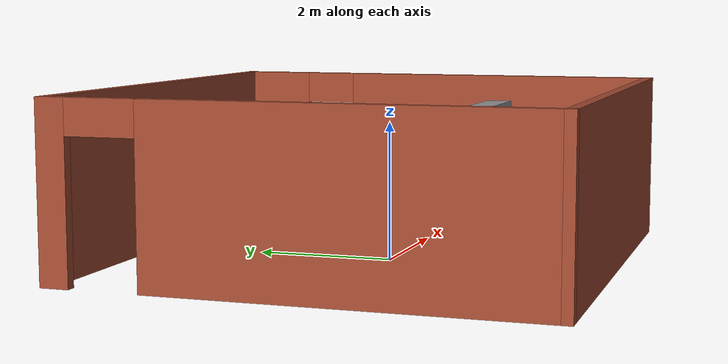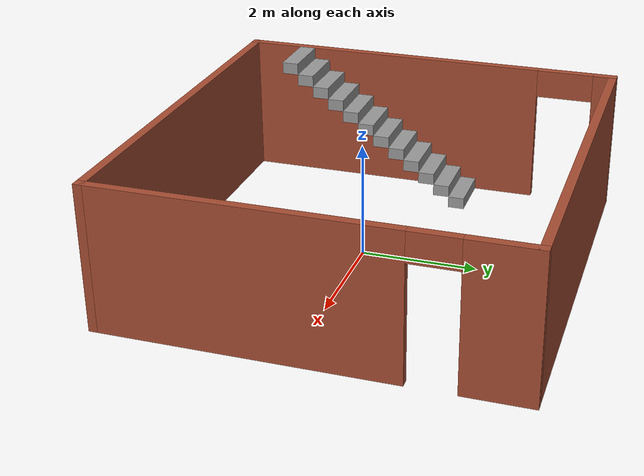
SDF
<?xml version='1.0'?>
<sdf version='1.6'>
  <model name='Stairs_wor'>
    <pose frame=''>0.191947 0.243534 0 0 -0 0</pose>
    <link name='Stairs_1'>
      <visual name='Stairs_1_Visual_0'>
        <pose frame=''>-2.8959 0.862168 0.104167 0 -0 0</pose>
        <geometry>
          <box>
            <size>1 0.291667 0.208333</size>
          </box>
        </geometry>
        <material>
          <script>
            <uri>file://media/materials/scripts/gazebo.material</uri>
            <name>Gazebo/Grey</name>
          </script>
          <ambient>0.533333 0.541176 0.521569 1</ambient>
        </material>
        <meta>
          <layer>0</layer>
        </meta>
      </visual>
      <collision name='Stairs_1_Collision_0'>
        <geometry>
          <box>
            <size>1 0.291667 0.208333</size>
          </box>
        </geometry>
        <pose frame=''>-2.8959 0.862168 0.104167 0 -0 0</pose>
      </collision>
      <visual name='Stairs_1_Visual_1'>
        <pose frame=''>-2.8959 0.570501 0.3125 0 -0 0</pose>
        <geometry>
          <box>
            <size>1 0.291667 0.208333</size>
          </box>
        </geometry>
        <material>
          <script>
            <uri>file://media/materials/scripts/gazebo.material</uri>
            <name>Gazebo/Grey</name>
          </script>
          <ambient>0.533333 0.541176 0.521569 1</ambient>
        </material>
        <meta>
          <layer>0</layer>
        </meta>
      </visual>
      <collision name='Stairs_1_Collision_1'>
        <geometry>
          <box>
            <size>1 0.291667 0.208333</size>
          </box>
        </geometry>
        <pose frame=''>-2.8959 0.570501 0.3125 0 -0 0</pose>
      </collision>
      <visual name='Stairs_1_Visual_2'>
        <pose frame=''>-2.8959 0.278834 0.520833 0 -0 0</pose>
        <geometry>
          <box>
            <size>1 0.291667 0.208333</size>
          </box>
        </geometry>
        <material>
          <script>
            <uri>file://media/materials/scripts/gazebo.material</uri>
            <name>Gazebo/Grey</name>
          </script>
          <ambient>0.533333 0.541176 0.521569 1</ambient>
        </material>
        <meta>
          <layer>0</layer>
        </meta>
      </visual>
      <collision name='Stairs_1_Collision_2'>
        <geometry>
          <box>
            <size>1 0.291667 0.208333</size>
          </box>
        </geometry>
        <pose frame=''>-2.8959 0.278834 0.520833 0 -0 0</pose>
      </collision>
      <visual name='Stairs_1_Visual_3'>
        <pose frame=''>-2.8959 -0.012833 0.729167 0 -0 0</pose>
        <geometry>
          <box>
            <size>1 0.291667 0.208333</size>
          </box>
        </geometry>
        <material>
          <script>
            <uri>file://media/materials/scripts/gazebo.material</uri>
            <name>Gazebo/Grey</name>
          </script>
          <ambient>0.533333 0.541176 0.521569 1</ambient>
        </material>
        <meta>
          <layer>0</layer>
        </meta>
      </visual>
      <collision name='Stairs_1_Collision_3'>
        <geometry>
          <box>
            <size>1 0.291667 0.208333</size>
          </box>
        </geometry>
        <pose frame=''>-2.8959 -0.012833 0.729167 0 -0 0</pose>
      </collision>
      <visual name='Stairs_1_Visual_4'>
        <pose frame=''>-2.8959 -0.304499 0.9375 0 -0 0</pose>
        <geometry>
          <box>
            <size>1 0.291667 0.208333</size>
          </box>
        </geometry>
        <material>
          <script>
            <uri>file://media/materials/scripts/gazebo.material</uri>
            <name>Gazebo/Grey</name>
          </script>
          <ambient>0.533333 0.541176 0.521569 1</ambient>
        </material>
        <meta>
          <layer>0</layer>
        </meta>
      </visual>
      <collision name='Stairs_1_Collision_4'>
        <geometry>
          <box>
            <size>1 0.291667 0.208333</size>
          </box>
        </geometry>
        <pose frame=''>-2.8959 -0.304499 0.9375 0 -0 0</pose>
      </collision>
      <visual name='Stairs_1_Visual_5'>
        <pose frame=''>-2.8959 -0.596166 1.14583 0 -0 0</pose>
        <geometry>
          <box>
            <size>1 0.291667 0.208333</size>
          </box>
        </geometry>
        <material>
          <script>
            <uri>file://media/materials/scripts/gazebo.material</uri>
            <name>Gazebo/Grey</name>
          </script>
          <ambient>0.533333 0.541176 0.521569 1</ambient>
        </material>
        <meta>
          <layer>0</layer>
        </meta>
      </visual>
      <collision name='Stairs_1_Collision_5'>
        <geometry>
          <box>
            <size>1 0.291667 0.208333</size>
          </box>
        </geometry>
        <pose frame=''>-2.8959 -0.596166 1.14583 0 -0 0</pose>
      </collision>
      <visual name='Stairs_1_Visual_6'>
        <pose frame=''>-2.8959 -0.887833 1.35417 0 -0 0</pose>
        <geometry>
          <box>
            <size>1 0.291667 0.208333</size>
          </box>
        </geometry>
        <material>
          <script>
            <uri>file://media/materials/scripts/gazebo.material</uri>
            <name>Gazebo/Grey</name>
          </script>
          <ambient>0.533333 0.541176 0.521569 1</ambient>
        </material>
        <meta>
          <layer>0</layer>
        </meta>
      </visual>
      <collision name='Stairs_1_Collision_6'>
        <geometry>
          <box>
            <size>1 0.291667 0.208333</size>
          </box>
        </geometry>
        <pose frame=''>-2.8959 -0.887833 1.35417 0 -0 0</pose>
      </collision>
      <visual name='Stairs_1_Visual_7'>
        <pose frame=''>-2.8959 -1.1795 1.5625 0 -0 0</pose>
        <geometry>
          <box>
            <size>1 0.291667 0.208333</size>
          </box>
        </geometry>
        <material>
          <script>
            <uri>file://media/materials/scripts/gazebo.material</uri>
            <name>Gazebo/Grey</name>
          </script>
          <ambient>0.533333 0.541176 0.521569 1</ambient>
        </material>
        <meta>
          <layer>0</layer>
        </meta>
      </visual>
      <collision name='Stairs_1_Collision_7'>
        <geometry>
          <box>
            <size>1 0.291667 0.208333</size>
          </box>
        </geometry>
        <pose frame=''>-2.8959 -1.1795 1.5625 0 -0 0</pose>
      </collision>
      <visual name='Stairs_1_Visual_8'>
        <pose frame=''>-2.8959 -1.47117 1.77083 0 -0 0</pose>
        <geometry>
          <box>
            <size>1 0.291667 0.208333</size>
          </box>
        </geometry>
        <material>
          <script>
            <uri>file://media/materials/scripts/gazebo.material</uri>
            <name>Gazebo/Grey</name>
          </script>
          <ambient>0.533333 0.541176 0.521569 1</ambient>
        </material>
        <meta>
          <layer>0</layer>
        </meta>
      </visual>
      <collision name='Stairs_1_Collision_8'>
        <geometry>
          <box>
            <size>1 0.291667 0.208333</size>
          </box>
        </geometry>
        <pose frame=''>-2.8959 -1.47117 1.77083 0 -0 0</pose>
      </collision>
      <visual name='Stairs_1_Visual_9'>
        <pose frame=''>-2.8959 -1.76283 1.97917 0 -0 0</pose>
        <geometry>
          <box>
            <size>1 0.291667 0.208333</size>
          </box>
        </geometry>
        <material>
          <script>
            <uri>file://media/materials/scripts/gazebo.material</uri>
            <name>Gazebo/Grey</name>
          </script>
          <ambient>0.533333 0.541176 0.521569 1</ambient>
        </material>
        <meta>
          <layer>0</layer>
        </meta>
      </visual>
      <collision name='Stairs_1_Collision_9'>
        <geometry>
          <box>
            <size>1 0.291667 0.208333</size>
          </box>
        </geometry>
        <pose frame=''>-2.8959 -1.76283 1.97917 0 -0 0</pose>
      </collision>
      <visual name='Stairs_1_Visual_10'>
        <pose frame=''>-2.8959 -2.0545 2.1875 0 -0 0</pose>
        <geometry>
          <box>
            <size>1 0.291667 0.208333</size>
          </box>
        </geometry>
        <material>
          <script>
            <uri>file://media/materials/scripts/gazebo.material</uri>
            <name>Gazebo/Grey</name>
          </script>
          <ambient>0.533333 0.541176 0.521569 1</ambient>
        </material>
        <meta>
          <layer>0</layer>
        </meta>
      </visual>
      <collision name='Stairs_1_Collision_10'>
        <geometry>
          <box>
            <size>1 0.291667 0.208333</size>
          </box>
        </geometry>
        <pose frame=''>-2.8959 -2.0545 2.1875 0 -0 0</pose>
      </collision>
      <visual name='Stairs_1_Visual_11'>
        <pose frame=''>-2.8959 -2.34617 2.39583 0 -0 0</pose>
        <geometry>
          <box>
            <size>1 0.291667 0.208333</size>
          </box>
        </geometry>
        <material>
          <script>
            <uri>file://media/materials/scripts/gazebo.material</uri>
            <name>Gazebo/Grey</name>
          </script>
          <ambient>0.533333 0.541176 0.521569 1</ambient>
        </material>
        <meta>
          <layer>0</layer>
        </meta>
      </visual>
      <collision name='Stairs_1_Collision_11'>
        <geometry>
          <box>
            <size>1 0.291667 0.208333</size>
          </box>
        </geometry>
        <pose frame=''>-2.8959 -2.34617 2.39583 0 -0 0</pose>
      </collision>
    </link>
    <link name='Wall_0'>
      <collision name='Wall_0_Collision'>
        <geometry>
          <box>
            <size>7 0.15 2.5</size>
          </box>
        </geometry>
        <pose frame=''>0 0 1.25 0 -0 0</pose>
      </collision>
      <visual name='Wall_0_Visual'>
        <pose frame=''>0 0 1.25 0 -0 0</pose>
        <geometry>
          <box>
            <size>7 0.15 2.5</size>
          </box>
        </geometry>
        <material>
          <script>
            <uri>file://media/materials/scripts/gazebo.material</uri>
            <name>Gazebo/Bricks</name>
          </script>
          <ambient>1 1 1 1</ambient>
        </material>
        <meta>
          <layer>0</layer>
        </meta>
      </visual>
      <pose frame=''>-0 3.425 0 0 -0 0</pose>
    </link>
    <link name='Wall_3'>
      <pose frame=''>3.425 -0 0 0 -0 -1.5708</pose>
      <visual name='Wall_3_Visual_0'>
        <pose frame=''>-2.9193 0 1.25 0 -0 0</pose>
        <geometry>
          <box>
            <size>1.1614 0.15 2.5</size>
          </box>
        </geometry>
        <material>
          <script>
            <uri>file://media/materials/scripts/gazebo.material</uri>
            <name>Gazebo/Bricks</name>
          </script>
          <ambient>1 1 1 1</ambient>
        </material>
        <meta>
          <layer>0</layer>
        </meta>
      </visual>
      <collision name='Wall_3_Collision_0'>
        <geometry>
          <box>
            <size>1.1614 0.15 2.5</size>
          </box>
        </geometry>
        <pose frame=''>-2.9193 0 1.25 0 -0 0</pose>
      </collision>
      <visual name='Wall_3_Visual_1'>
        <pose frame=''>0.9807 0 1.25 0 -0 0</pose>
        <geometry>
          <box>
            <size>5.0386 0.15 2.5</size>
          </box>
        </geometry>
        <material>
          <script>
            <uri>file://media/materials/scripts/gazebo.material</uri>
            <name>Gazebo/Bricks</name>
          </script>
          <ambient>1 1 1 1</ambient>
        </material>
        <meta>
          <layer>0</layer>
        </meta>
      </visual>
      <collision name='Wall_3_Collision_1'>
        <geometry>
          <box>
            <size>5.0386 0.15 2.5</size>
          </box>
        </geometry>
        <pose frame=''>0.9807 0 1.25 0 -0 0</pose>
      </collision>
      <visual name='Wall_3_Visual_2'>
        <pose frame=''>-1.9386 0 2.25 0 -0 0</pose>
        <geometry>
          <box>
            <size>0.8 0.15 0.5</size>
          </box>
        </geometry>
        <material>
          <script>
            <uri>file://media/materials/scripts/gazebo.material</uri>
            <name>Gazebo/Bricks</name>
          </script>
          <ambient>1 1 1 1</ambient>
        </material>
        <meta>
          <layer>0</layer>
        </meta>
      </visual>
      <collision name='Wall_3_Collision_2'>
        <geometry>
          <box>
            <size>0.8 0.15 0.5</size>
          </box>
        </geometry>
        <pose frame=''>-1.9386 0 2.25 0 -0 0</pose>
      </collision>
    </link>
    <link name='Wall_4'>
      <collision name='Wall_4_Collision'>
        <geometry>
          <box>
            <size>7 0.15 2.5</size>
          </box>
        </geometry>
        <pose frame=''>0 0 1.25 0 -0 0</pose>
      </collision>
      <visual name='Wall_4_Visual'>
        <pose frame=''>0 0 1.25 0 -0 0</pose>
        <geometry>
          <box>
            <size>7 0.15 2.5</size>
          </box>
        </geometry>
        <material>
          <script>
            <uri>file://media/materials/scripts/gazebo.material</uri>
            <name>Gazebo/Bricks</name>
          </script>
          <ambient>1 1 1 1</ambient>
        </material>
        <meta>
          <layer>0</layer>
        </meta>
      </visual>
      <pose frame=''>-0 -3.425 0 0 -0 3.14159</pose>
    </link>
    <link name='Wall_5'>
      <pose frame=''>-3.425 -0 0 0 -0 1.5708</pose>
      <visual name='Wall_5_Visual_0'>
        <pose frame=''>-0.709685 0 1.25 0 -0 0</pose>
        <geometry>
          <box>
            <size>5.58063 0.15 2.5</size>
          </box>
        </geometry>
        <material>
          <script>
            <uri>file://media/materials/scripts/gazebo.material</uri>
            <name>Gazebo/Bricks</name>
          </script>
          <ambient>1 1 1 1</ambient>
        </material>
        <meta>
          <layer>0</layer>
        </meta>
      </visual>
      <collision name='Wall_5_Collision_0'>
        <geometry>
          <box>
            <size>5.58063 0.15 2.5</size>
          </box>
        </geometry>
        <pose frame=''>-0.709685 0 1.25 0 -0 0</pose>
      </collision>
      <visual name='Wall_5_Visual_1'>
        <pose frame=''>3.29032 0 1.25 0 -0 0</pose>
        <geometry>
          <box>
            <size>0.41937 0.15 2.5</size>
          </box>
        </geometry>
        <material>
          <script>
            <uri>file://media/materials/scripts/gazebo.material</uri>
            <name>Gazebo/Bricks</name>
          </script>
          <ambient>1 1 1 1</ambient>
        </material>
        <meta>
          <layer>0</layer>
        </meta>
      </visual>
      <collision name='Wall_5_Collision_1'>
        <geometry>
          <box>
            <size>0.41937 0.15 2.5</size>
          </box>
        </geometry>
        <pose frame=''>3.29032 0 1.25 0 -0 0</pose>
      </collision>
      <visual name='Wall_5_Visual_2'>
        <pose frame=''>2.58063 0 2.25 0 -0 0</pose>
        <geometry>
          <box>
            <size>1 0.15 0.5</size>
          </box>
        </geometry>
        <material>
          <script>
            <uri>file://media/materials/scripts/gazebo.material</uri>
            <name>Gazebo/Bricks</name>
          </script>
          <ambient>1 1 1 1</ambient>
        </material>
        <meta>
          <layer>0</layer>
        </meta>
      </visual>
      <collision name='Wall_5_Collision_2'>
        <geometry>
          <box>
            <size>1 0.15 0.5</size>
          </box>
        </geometry>
        <pose frame=''>2.58063 0 2.25 0 -0 0</pose>
      </collision>
    </link>
    <static>1</static>
  </model>
</sdf>
